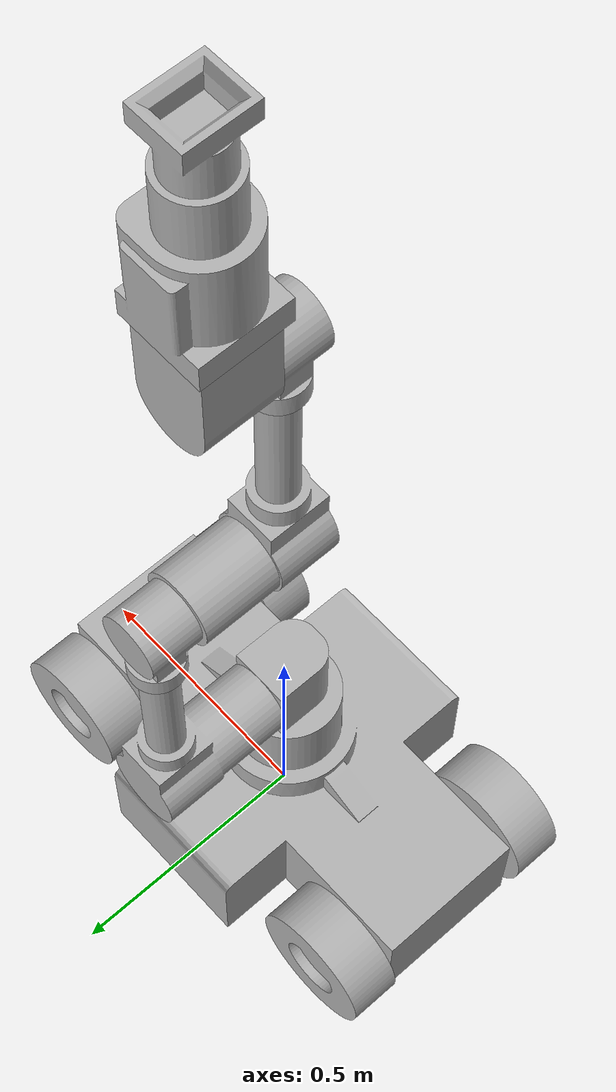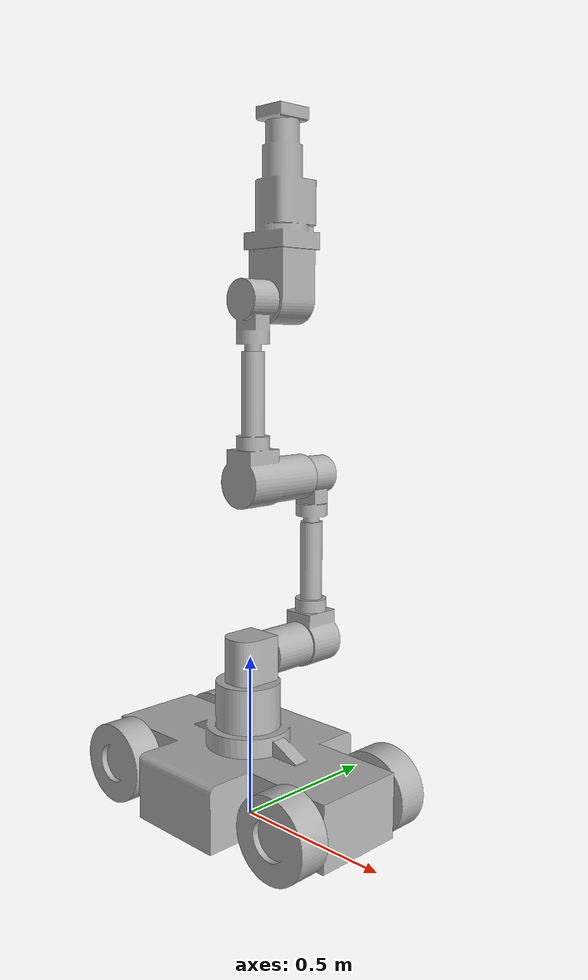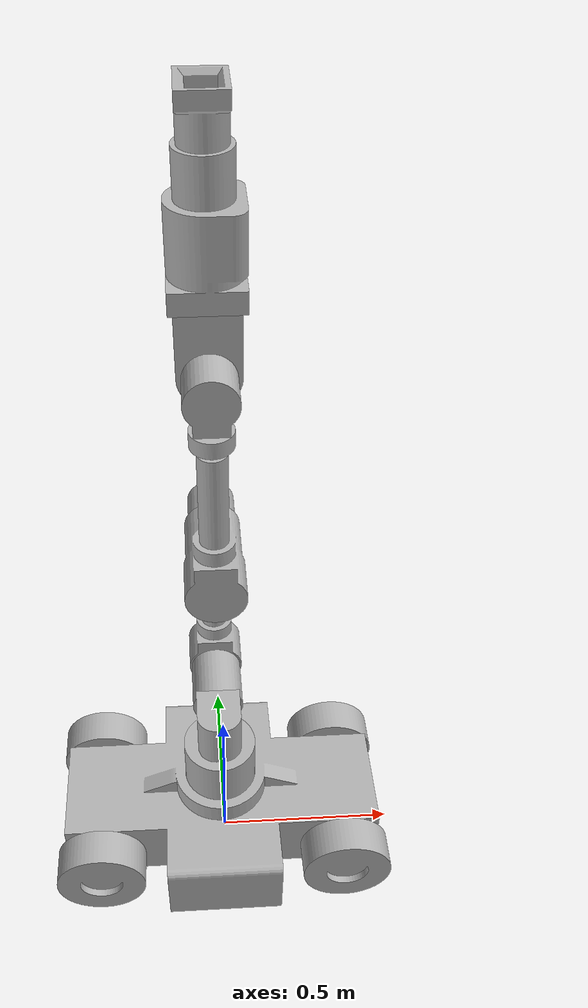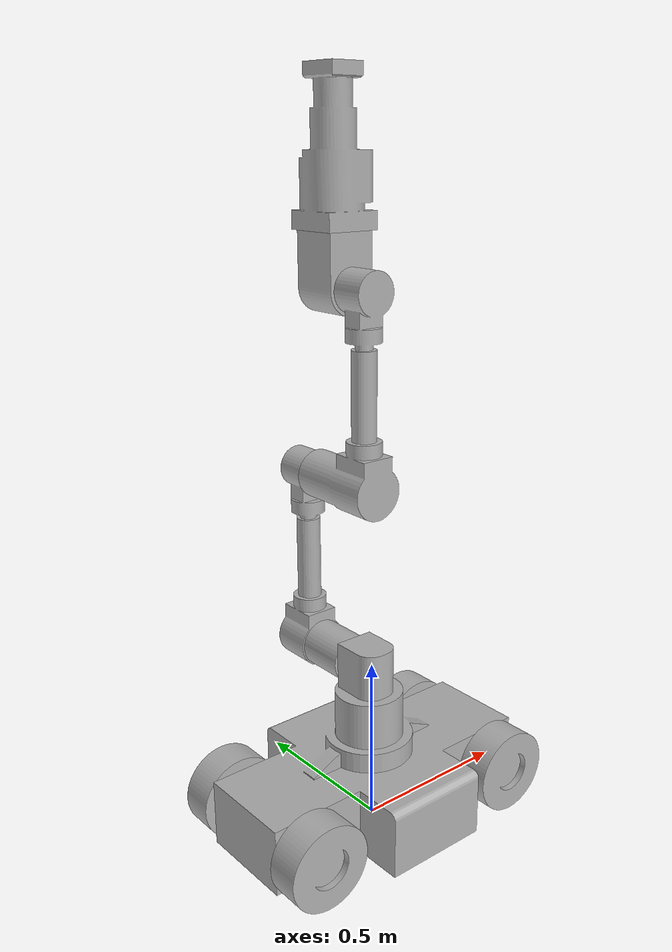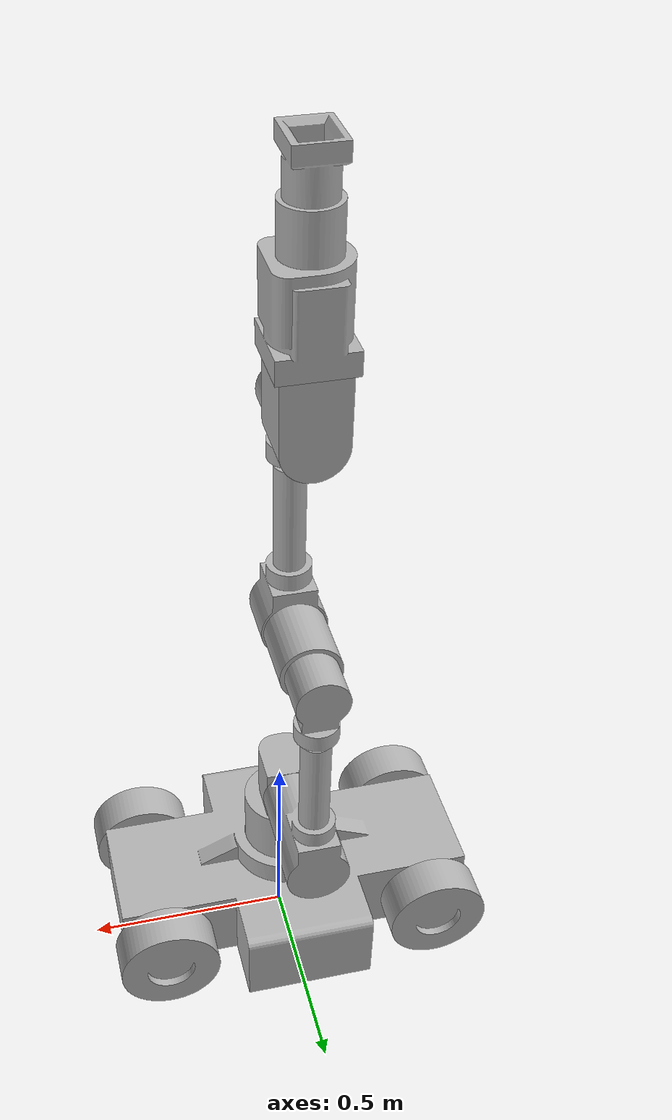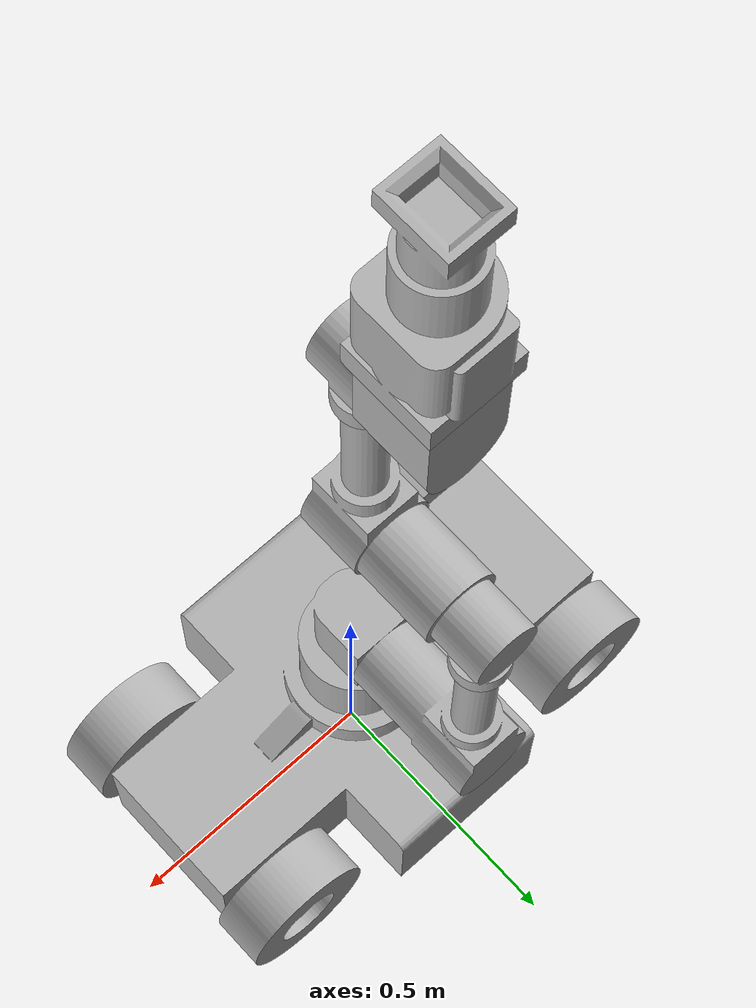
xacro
<?xml version="1.0" ?>
<robot name="camara_movil" xmlns:xacro="http://www.ros.org/wiki/xacro">

<xacro:include filename="$(find camara_movil_description)/urdf/materials.xacro" />
<xacro:include filename="$(find camara_movil_description)/urdf/camara_movil.trans" />
<xacro:include filename="$(find camara_movil_description)/urdf/camara_movil.gazebo" />
<link name="base_link">
  <inertial>
    <origin xyz="-0.011436842088571233 1.5012186169488358e-06 0.12659588390377294" rpy="0 0 0"/>
    <mass value="588.3357714913217"/>
    <inertia ixx="13.487101" iyy="33.233797" izz="42.588403" ixy="-0.000143" iyz="-0.000101" ixz="0.000678"/>
  </inertial>
  <visual>
    <origin xyz="0 0 0" rpy="0 0 0"/>
    <geometry>
      <mesh filename="package://camara_movil_description/meshes/base_link.stl" scale="0.001 0.001 0.001"/>
    </geometry>
    <material name="silver"/>
  </visual>
  <collision>
    <origin xyz="0 0 0" rpy="0 0 0"/>
    <geometry>
      <mesh filename="package://camara_movil_description/meshes/base_link.stl" scale="0.001 0.001 0.001"/>
    </geometry>
  </collision>
</link>

<link name="l01_1">
  <inertial>
    <origin xyz="2.812679527064432e-07 0.0006238922367959587 2.7327584889436096e-08" rpy="0 0 0"/>
    <mass value="34.78504903742396"/>
    <inertia ixx="0.175688" iyy="0.296269" izz="0.175688" ixy="0.0" iyz="0.0" ixz="-0.0"/>
  </inertial>
  <visual>
    <origin xyz="-0.338573 0.21 -0.125029" rpy="0 0 0"/>
    <geometry>
      <mesh filename="package://camara_movil_description/meshes/l01_1.stl" scale="0.001 0.001 0.001"/>
    </geometry>
    <material name="silver"/>
  </visual>
  <collision>
    <origin xyz="-0.338573 0.21 -0.125029" rpy="0 0 0"/>
    <geometry>
      <mesh filename="package://camara_movil_description/meshes/l01_1.stl" scale="0.001 0.001 0.001"/>
    </geometry>
  </collision>
</link>

<link name="l03_1">
  <inertial>
    <origin xyz="2.812679526509321e-07 0.0006238922367957089 2.732756593237795e-08" rpy="0 0 0"/>
    <mass value="34.78504903742395"/>
    <inertia ixx="0.175688" iyy="0.296269" izz="0.175688" ixy="0.0" iyz="-0.0" ixz="0.0"/>
  </inertial>
  <visual>
    <origin xyz="0.361427 0.21 -0.125029" rpy="0 0 0"/>
    <geometry>
      <mesh filename="package://camara_movil_description/meshes/l03_1.stl" scale="0.001 0.001 0.001"/>
    </geometry>
    <material name="silver"/>
  </visual>
  <collision>
    <origin xyz="0.361427 0.21 -0.125029" rpy="0 0 0"/>
    <geometry>
      <mesh filename="package://camara_movil_description/meshes/l03_1.stl" scale="0.001 0.001 0.001"/>
    </geometry>
  </collision>
</link>

<link name="l02_1">
  <inertial>
    <origin xyz="2.812679525954209e-07 -0.0006238922367951261 2.73275850004584e-08" rpy="0 0 0"/>
    <mass value="34.78504903742397"/>
    <inertia ixx="0.175688" iyy="0.296269" izz="0.175688" ixy="-0.0" iyz="-0.0" ixz="-0.0"/>
  </inertial>
  <visual>
    <origin xyz="-0.338573 -0.21 -0.125029" rpy="0 0 0"/>
    <geometry>
      <mesh filename="package://camara_movil_description/meshes/l02_1.stl" scale="0.001 0.001 0.001"/>
    </geometry>
    <material name="silver"/>
  </visual>
  <collision>
    <origin xyz="-0.338573 -0.21 -0.125029" rpy="0 0 0"/>
    <geometry>
      <mesh filename="package://camara_movil_description/meshes/l02_1.stl" scale="0.001 0.001 0.001"/>
    </geometry>
  </collision>
</link>

<link name="l04_1">
  <inertial>
    <origin xyz="2.812679525954209e-07 -0.0006238922367951538 2.7327565987889102e-08" rpy="0 0 0"/>
    <mass value="34.78504903742397"/>
    <inertia ixx="0.175688" iyy="0.296269" izz="0.175688" ixy="0.0" iyz="0.0" ixz="0.0"/>
  </inertial>
  <visual>
    <origin xyz="0.361427 -0.21 -0.125029" rpy="0 0 0"/>
    <geometry>
      <mesh filename="package://camara_movil_description/meshes/l04_1.stl" scale="0.001 0.001 0.001"/>
    </geometry>
    <material name="silver"/>
  </visual>
  <collision>
    <origin xyz="0.361427 -0.21 -0.125029" rpy="0 0 0"/>
    <geometry>
      <mesh filename="package://camara_movil_description/meshes/l04_1.stl" scale="0.001 0.001 0.001"/>
    </geometry>
  </collision>
</link>

<link name="l1_1">
  <inertial>
    <origin xyz="2.8126794662623744e-07 1.947930098151865e-05 0.17518976679685583" rpy="0 0 0"/>
    <mass value="72.03249808197829"/>
    <inertia ixx="0.867804" iyy="0.863984" izz="0.307498" ixy="-0.0" iyz="-0.000203" ixz="0.0"/>
  </inertial>
  <visual>
    <origin xyz="0.011427 -0.0 -0.175029" rpy="0 0 0"/>
    <geometry>
      <mesh filename="package://camara_movil_description/meshes/l1_1.stl" scale="0.001 0.001 0.001"/>
    </geometry>
    <material name="silver"/>
  </visual>
  <collision>
    <origin xyz="0.011427 -0.0 -0.175029" rpy="0 0 0"/>
    <geometry>
      <mesh filename="package://camara_movil_description/meshes/l1_1.stl" scale="0.001 0.001 0.001"/>
    </geometry>
  </collision>
</link>

<link name="l2_1">
  <inertial>
    <origin xyz="2.8126794134400446e-07 0.19760361530970827 0.032595348936150736" rpy="0 0 0"/>
    <mass value="44.90659325604421"/>
    <inertia ixx="0.626775" iyy="0.378961" izz="0.351975" ixy="0.0" iyz="-0.091332" ixz="0.0"/>
  </inertial>
  <visual>
    <origin xyz="0.011427 -0.02 -0.495029" rpy="0 0 0"/>
    <geometry>
      <mesh filename="package://camara_movil_description/meshes/l2_1.stl" scale="0.001 0.001 0.001"/>
    </geometry>
    <material name="silver"/>
  </visual>
  <collision>
    <origin xyz="0.011427 -0.02 -0.495029" rpy="0 0 0"/>
    <geometry>
      <mesh filename="package://camara_movil_description/meshes/l2_1.stl" scale="0.001 0.001 0.001"/>
    </geometry>
  </collision>
</link>

<link name="l3_1">
  <inertial>
    <origin xyz="2.8126793094607194e-07 0.0023947375388668757 0.3246782060627731" rpy="0 0 0"/>
    <mass value="15.76912911354063"/>
    <inertia ixx="0.275689" iyy="0.277554" izz="0.019277" ixy="0.0" iyz="-0.003977" ixz="0.0"/>
  </inertial>
  <visual>
    <origin xyz="0.011427 -0.28 -0.605029" rpy="0 0 0"/>
    <geometry>
      <mesh filename="package://camara_movil_description/meshes/l3_1.stl" scale="0.001 0.001 0.001"/>
    </geometry>
    <material name="silver"/>
  </visual>
  <collision>
    <origin xyz="0.011427 -0.28 -0.605029" rpy="0 0 0"/>
    <geometry>
      <mesh filename="package://camara_movil_description/meshes/l3_1.stl" scale="0.001 0.001 0.001"/>
    </geometry>
  </collision>
</link>

<link name="l5_1">
  <inertial>
    <origin xyz="2.8126791493977843e-07 -0.002394737538907059 0.3246782060627609" rpy="0 0 0"/>
    <mass value="15.769129113540673"/>
    <inertia ixx="0.275689" iyy="0.277554" izz="0.019277" ixy="-0.0" iyz="0.003977" ixz="0.0"/>
  </inertial>
  <visual>
    <origin xyz="0.011427 -0.02 -1.145029" rpy="0 0 0"/>
    <geometry>
      <mesh filename="package://camara_movil_description/meshes/l5_1.stl" scale="0.001 0.001 0.001"/>
    </geometry>
    <material name="silver"/>
  </visual>
  <collision>
    <origin xyz="0.011427 -0.02 -1.145029" rpy="0 0 0"/>
    <geometry>
      <mesh filename="package://camara_movil_description/meshes/l5_1.stl" scale="0.001 0.001 0.001"/>
    </geometry>
  </collision>
</link>

<link name="l4_1">
  <inertial>
    <origin xyz="2.8126792714876225e-07 -0.197603615309756 0.03259534893614391" rpy="0 0 0"/>
    <mass value="44.90659325604385"/>
    <inertia ixx="0.626775" iyy="0.378961" izz="0.351975" ixy="-0.0" iyz="0.091332" ixz="0.0"/>
  </inertial>
  <visual>
    <origin xyz="0.011427 -0.28 -1.035029" rpy="0 0 0"/>
    <geometry>
      <mesh filename="package://camara_movil_description/meshes/l4_1.stl" scale="0.001 0.001 0.001"/>
    </geometry>
    <material name="silver"/>
  </visual>
  <collision>
    <origin xyz="0.011427 -0.28 -1.035029" rpy="0 0 0"/>
    <geometry>
      <mesh filename="package://camara_movil_description/meshes/l4_1.stl" scale="0.001 0.001 0.001"/>
    </geometry>
  </collision>
</link>

<link name="l7_1">
  <inertial>
    <origin xyz="0.002659248732124456 0.0020974782046724594 0.10869578686101766" rpy="0 0 0"/>
    <mass value="51.218441413325046"/>
    <inertia ixx="0.655289" iyy="0.646554" izz="0.173279" ixy="0.00096" iyz="0.004874" ixz="0.003136"/>
  </inertial>
  <visual>
    <origin xyz="0.011427 -0.14 -1.775029" rpy="0 0 0"/>
    <geometry>
      <mesh filename="package://camara_movil_description/meshes/l7_1.stl" scale="0.001 0.001 0.001"/>
    </geometry>
    <material name="silver"/>
  </visual>
  <collision>
    <origin xyz="0.011427 -0.14 -1.775029" rpy="0 0 0"/>
    <geometry>
      <mesh filename="package://camara_movil_description/meshes/l7_1.stl" scale="0.001 0.001 0.001"/>
    </geometry>
  </collision>
</link>

<link name="l6_1">
  <inertial>
    <origin xyz="2.812679069132129e-07 0.11584769784683084 0.050463419712759805" rpy="0 0 0"/>
    <mass value="34.55892933493254"/>
    <inertia ixx="0.207811" iyy="0.191468" izz="0.114309" ixy="0.0" iyz="-0.007241" ixz="0.0"/>
  </inertial>
  <visual>
    <origin xyz="0.011427 -0.02 -1.575029" rpy="0 0 0"/>
    <geometry>
      <mesh filename="package://camara_movil_description/meshes/l6_1.stl" scale="0.001 0.001 0.001"/>
    </geometry>
    <material name="silver"/>
  </visual>
  <collision>
    <origin xyz="0.011427 -0.02 -1.575029" rpy="0 0 0"/>
    <geometry>
      <mesh filename="package://camara_movil_description/meshes/l6_1.stl" scale="0.001 0.001 0.001"/>
    </geometry>
  </collision>
</link>

<joint name="q01" type="continuous">
  <origin xyz="0.338573 -0.21 0.125029" rpy="0 0 0"/>
  <parent link="base_link"/>
  <child link="l01_1"/>
  <axis xyz="0.0 -1.0 -0.0"/>
</joint>

<joint name="q03" type="continuous">
  <origin xyz="-0.361427 -0.21 0.125029" rpy="0 0 0"/>
  <parent link="base_link"/>
  <child link="l03_1"/>
  <axis xyz="0.0 -1.0 -0.0"/>
</joint>

<joint name="q02" type="continuous">
  <origin xyz="0.338573 0.21 0.125029" rpy="0 0 0"/>
  <parent link="base_link"/>
  <child link="l02_1"/>
  <axis xyz="-0.0 1.0 0.0"/>
</joint>

<joint name="q04" type="continuous">
  <origin xyz="-0.361427 0.21 0.125029" rpy="0 0 0"/>
  <parent link="base_link"/>
  <child link="l04_1"/>
  <axis xyz="-0.0 1.0 0.0"/>
</joint>

<joint name="q1" type="continuous">
  <origin xyz="-0.011427 0.0 0.175029" rpy="0 0 0"/>
  <parent link="base_link"/>
  <child link="l1_1"/>
  <axis xyz="-0.0 -0.0 1.0"/>
</joint>

<joint name="q2" type="continuous">
  <origin xyz="0.0 0.02 0.32" rpy="0 0 0"/>
  <parent link="l1_1"/>
  <child link="l2_1"/>
  <axis xyz="-0.0 1.0 -0.0"/>
</joint>

<joint name="q3" type="prismatic">
  <origin xyz="0.0 0.26 0.11" rpy="0 0 0"/>
  <parent link="l2_1"/>
  <child link="l3_1"/>
  <axis xyz="-0.0 -0.0 1.0"/>
  <limit upper="0.25" lower="0.0" effort="100" velocity="100"/>
</joint>

<joint name="q5" type="prismatic">
  <origin xyz="0.0 -0.26 0.11" rpy="0 0 0"/>
  <parent link="l4_1"/>
  <child link="l5_1"/>
  <axis xyz="-0.0 -0.0 1.0"/>
  <limit upper="0.25" lower="0.0" effort="100" velocity="100"/>
</joint>

<joint name="q4" type="continuous">
  <origin xyz="0.0 0.0 0.43" rpy="0 0 0"/>
  <parent link="l3_1"/>
  <child link="l4_1"/>
  <axis xyz="0.0 -1.0 -0.0"/>
</joint>

<joint name="q7" type="continuous">
  <origin xyz="0.0 0.12 0.2" rpy="0 0 0"/>
  <parent link="l6_1"/>
  <child link="l7_1"/>
  <axis xyz="-0.0 -0.0 1.0"/>
</joint>

<joint name="q6" type="continuous">
  <origin xyz="0.0 0.0 0.43" rpy="0 0 0"/>
  <parent link="l5_1"/>
  <child link="l6_1"/>
  <axis xyz="-0.0 1.0 0.0"/>
</joint>

</robot>

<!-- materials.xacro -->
<robot name="camara_movil" xmlns:xacro="http://www.ros.org/wiki/xacro" >

<material name="silver">
  <color rgba="0.700 0.700 0.700 1.000"/>
</material>

</robot>

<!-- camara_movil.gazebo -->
<robot name="camara_movil" xmlns:xacro="http://www.ros.org/wiki/xacro" >

<xacro:property name="body_color" value="Gazebo/Silver" />

<gazebo>
  <plugin name="control" filename="libgazebo_ros_control.so"/>
</gazebo>
<gazebo reference="base_link">
  <material>${body_color}</material>
  <mu1>0.2</mu1>
  <mu2>0.2</mu2>
  <selfCollide>true</selfCollide>
  <gravity>true</gravity>
</gazebo>

<gazebo reference="l01_1">
  <material>${body_color}</material>
  <mu1>0.2</mu1>
  <mu2>0.2</mu2>
  <selfCollide>true</selfCollide>
</gazebo>

<gazebo reference="l03_1">
  <material>${body_color}</material>
  <mu1>0.2</mu1>
  <mu2>0.2</mu2>
  <selfCollide>true</selfCollide>
</gazebo>

<gazebo reference="l02_1">
  <material>${body_color}</material>
  <mu1>0.2</mu1>
  <mu2>0.2</mu2>
  <selfCollide>true</selfCollide>
</gazebo>

<gazebo reference="l04_1">
  <material>${body_color}</material>
  <mu1>0.2</mu1>
  <mu2>0.2</mu2>
  <selfCollide>true</selfCollide>
</gazebo>

<gazebo reference="l1_1">
  <material>${body_color}</material>
  <mu1>0.2</mu1>
  <mu2>0.2</mu2>
  <selfCollide>true</selfCollide>
</gazebo>

<gazebo reference="l2_1">
  <material>${body_color}</material>
  <mu1>0.2</mu1>
  <mu2>0.2</mu2>
  <selfCollide>true</selfCollide>
</gazebo>

<gazebo reference="l3_1">
  <material>${body_color}</material>
  <mu1>0.2</mu1>
  <mu2>0.2</mu2>
  <selfCollide>true</selfCollide>
</gazebo>

<gazebo reference="l5_1">
  <material>${body_color}</material>
  <mu1>0.2</mu1>
  <mu2>0.2</mu2>
  <selfCollide>true</selfCollide>
</gazebo>

<gazebo reference="l4_1">
  <material>${body_color}</material>
  <mu1>0.2</mu1>
  <mu2>0.2</mu2>
  <selfCollide>true</selfCollide>
</gazebo>

<gazebo reference="l7_1">
  <material>${body_color}</material>
  <mu1>0.2</mu1>
  <mu2>0.2</mu2>
  <selfCollide>true</selfCollide>
</gazebo>

<gazebo reference="l6_1">
  <material>${body_color}</material>
  <mu1>0.2</mu1>
  <mu2>0.2</mu2>
  <selfCollide>true</selfCollide>
</gazebo>

</robot>
